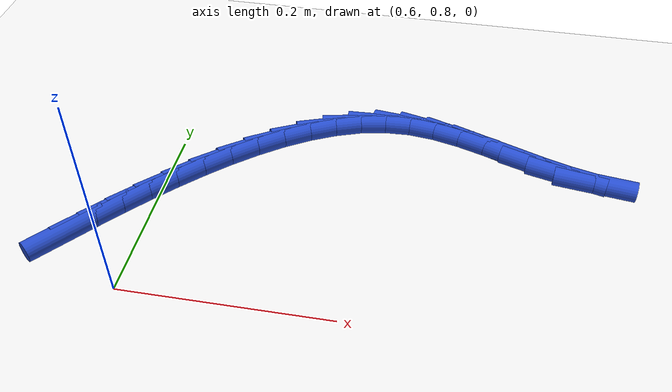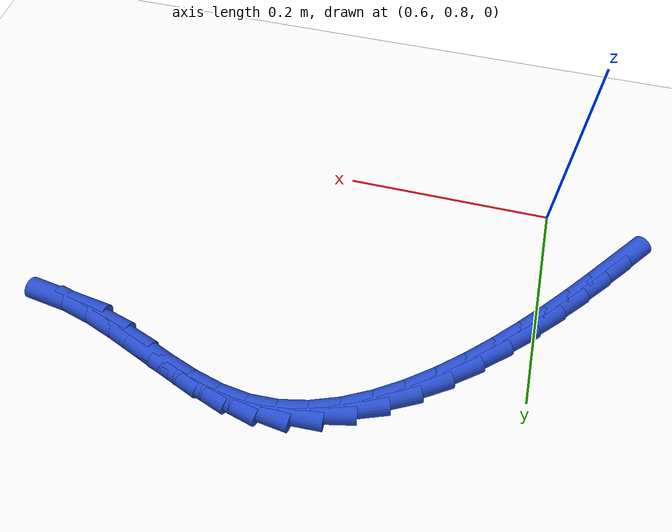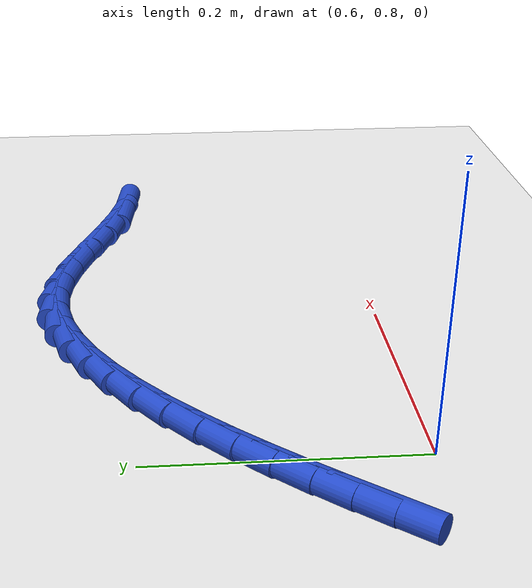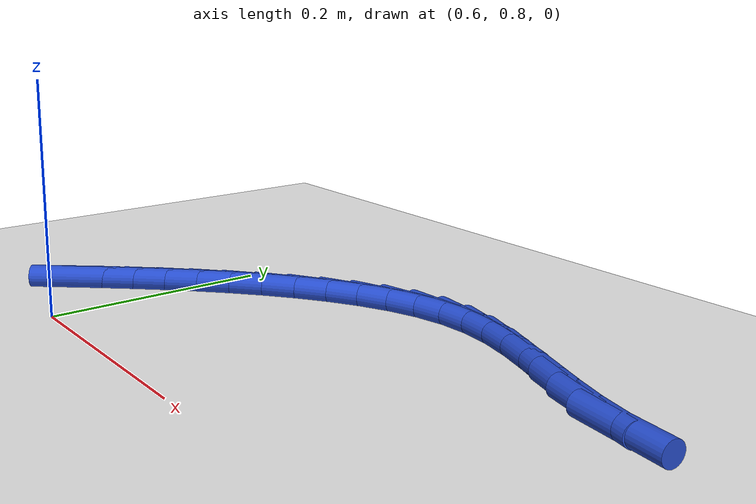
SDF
<sdf version="1.6">
 <world name="default">
  <model name="ground_plane">
   <static>1</static>
   <link name="link">
    <collision name="collision">
     <geometry><plane><normal>0 0 1</normal><size>100 100</size></plane></geometry>
     <surface><friction><ode><mu>100</mu><mu2>50</mu2></ode></friction></surface>
    </collision>
    <visual name="visual">
     <cast_shadows>0</cast_shadows>
     <geometry><plane><normal>0 0 1</normal><size>100 100</size></plane></geometry>
     <material>
      <script><uri>file://media/materials/scripts/gazebo.material</uri><name>Gazebo/WhiteGlow</name></script>
     </material>
    </visual>
   </link>
  </model>
  <model name="line">
   <link name="link_37">
    <pose>0.5349101521762201 0.849109575951042 0.01 0 1.57 0.8877834778519994</pose>
    <collision name="collision">
     <geometry><cylinder><radius>0.01</radius><length>0.08</length></cylinder></geometry>
    </collision>
    <visual name="visual">
     <material>
      <script><name>Gazebo/Blue</name><uri>file://media/materials/scripts/gazebo.material</uri></script>
     </material>
     <geometry><cylinder><radius>0.01</radius><length>0.08</length></cylinder></geometry>
    </visual>
   </link>
   <link name="link_38">
    <pose>0.5528146654434647 0.8711145753755072 0.01 0 1.57 0.8724163662346153</pose>
    <collision name="collision">
     <geometry><cylinder><radius>0.01</radius><length>0.08</length></cylinder></geometry>
    </collision>
    <visual name="visual">
     <material>
      <script><name>Gazebo/Blue</name><uri>file://media/materials/scripts/gazebo.material</uri></script>
     </material>
     <geometry><cylinder><radius>0.01</radius><length>0.08</length></cylinder></geometry>
    </visual>
   </link>
   <link name="link_39">
    <pose>0.5713044225989897 0.893138703471997 0.01 0 1.57 0.8507675223047537</pose>
    <collision name="collision">
     <geometry><cylinder><radius>0.01</radius><length>0.08</length></cylinder></geometry>
    </collision>
    <visual name="visual">
     <material>
      <script><name>Gazebo/Blue</name><uri>file://media/materials/scripts/gazebo.material</uri></script>
     </material>
     <geometry><cylinder><radius>0.01</radius><length>0.08</length></cylinder></geometry>
    </visual>
   </link>
   <link name="link_40">
    <pose>0.5905718948425275 0.915105477926843 0.01 0 1.57 0.8232991175520333</pose>
    <collision name="collision">
     <geometry><cylinder><radius>0.01</radius><length>0.08</length></cylinder></geometry>
    </collision>
    <visual name="visual">
     <material>
      <script><name>Gazebo/Blue</name><uri>file://media/materials/scripts/gazebo.material</uri></script>
     </material>
     <geometry><cylinder><radius>0.01</radius><length>0.08</length></cylinder></geometry>
    </visual>
   </link>
   <link name="link_41">
    <pose>0.6108095526507975 0.9369384153739746 0.01 0 1.57 0.7900038570666732</pose>
    <collision name="collision">
     <geometry><cylinder><radius>0.01</radius><length>0.08</length></cylinder></geometry>
    </collision>
    <visual name="visual">
     <material>
      <script><name>Gazebo/Blue</name><uri>file://media/materials/scripts/gazebo.material</uri></script>
     </material>
     <geometry><cylinder><radius>0.01</radius><length>0.08</length></cylinder></geometry>
    </visual>
   </link>
   <link name="link_42">
    <pose>0.6321555042083911 0.9584819039512215 0.01 0 1.57 0.7486959255549774</pose>
    <collision name="collision">
     <geometry><cylinder><radius>0.01</radius><length>0.08</length></cylinder></geometry>
    </collision>
    <visual name="visual">
     <material>
      <script><name>Gazebo/Blue</name><uri>file://media/materials/scripts/gazebo.material</uri></script>
     </material>
     <geometry><cylinder><radius>0.01</radius><length>0.08</length></cylinder></geometry>
    </visual>
   </link>
   <link name="link_43">
    <pose>0.6545456667338362 0.9792860272988753 0.01 0 1.57 0.6975241856056223</pose>
    <collision name="collision">
     <geometry><cylinder><radius>0.01</radius><length>0.08</length></cylinder></geometry>
    </collision>
    <visual name="visual">
     <material>
      <script><name>Gazebo/Blue</name><uri>file://media/materials/scripts/gazebo.material</uri></script>
     </material>
     <geometry><cylinder><radius>0.01</radius><length>0.08</length></cylinder></geometry>
    </visual>
   </link>
   <link name="link_44">
    <pose>0.6778689600877729 0.9988324607892015 0.01 0 1.57 0.6344658465230945</pose>
    <collision name="collision">
     <geometry><cylinder><radius>0.01</radius><length>0.08</length></cylinder></geometry>
    </collision>
    <visual name="visual">
     <material>
      <script><name>Gazebo/Blue</name><uri>file://media/materials/scripts/gazebo.material</uri></script>
     </material>
     <geometry><cylinder><radius>0.01</radius><length>0.08</length></cylinder></geometry>
    </visual>
   </link>
   <link name="link_45">
    <pose>0.7020143041308403 1.0166028797944655 0.01 0 1.57 0.5568872210970363</pose>
    <collision name="collision">
     <geometry><cylinder><radius>0.01</radius><length>0.08</length></cylinder></geometry>
    </collision>
    <visual name="visual">
     <material>
      <script><name>Gazebo/Blue</name><uri>file://media/materials/scripts/gazebo.material</uri></script>
     </material>
     <geometry><cylinder><radius>0.01</radius><length>0.08</length></cylinder></geometry>
    </visual>
   </link>
   <link name="link_46">
    <pose>0.7268706187236783 1.0320789596869335 0.01 0 1.57 0.4616126764074338</pose>
    <collision name="collision">
     <geometry><cylinder><radius>0.01</radius><length>0.08</length></cylinder></geometry>
    </collision>
    <visual name="visual">
     <material>
      <script><name>Gazebo/Blue</name><uri>file://media/materials/scripts/gazebo.material</uri></script>
     </material>
     <geometry><cylinder><radius>0.01</radius><length>0.08</length></cylinder></geometry>
    </visual>
   </link>
   <link name="link_47">
    <pose>0.7523268237269267 1.0447423758388699 0.01 0 1.57 0.34529017203838597</pose>
    <collision name="collision">
     <geometry><cylinder><radius>0.01</radius><length>0.08</length></cylinder></geometry>
    </collision>
    <visual name="visual">
     <material>
      <script><name>Gazebo/Blue</name><uri>file://media/materials/scripts/gazebo.material</uri></script>
     </material>
     <geometry><cylinder><radius>0.01</radius><length>0.08</length></cylinder></geometry>
    </visual>
   </link>
   <link name="link_48">
    <pose>0.778271839001225 1.0540748036225411 0.01 0 1.57 0.20536660697648249</pose>
    <collision name="collision">
     <geometry><cylinder><radius>0.01</radius><length>0.08</length></cylinder></geometry>
    </collision>
    <visual name="visual">
     <material>
      <script><name>Gazebo/Blue</name><uri>file://media/materials/scripts/gazebo.material</uri></script>
     </material>
     <geometry><cylinder><radius>0.01</radius><length>0.08</length></cylinder></geometry>
    </visual>
   </link>
   <link name="link_49">
    <pose>0.8045945844072123 1.0595579184102117 0.01 0 1.57 0.04193933534597117</pose>
    <collision name="collision">
     <geometry><cylinder><radius>0.01</radius><length>0.08</length></cylinder></geometry>
    </collision>
    <visual name="visual">
     <material>
      <script><name>Gazebo/Blue</name><uri>file://media/materials/scripts/gazebo.material</uri></script>
     </material>
     <geometry><cylinder><radius>0.01</radius><length>0.08</length></cylinder></geometry>
    </visual>
   </link>
   <link name="link_50">
    <pose>0.8311839948935968 1.0606737148843681 0.01 0 1.57 -0.12609204755094047</pose>
    <collision name="collision">
     <geometry><cylinder><radius>0.01</radius><length>0.08</length></cylinder></geometry>
    </collision>
    <visual name="visual">
     <material>
      <script><name>Gazebo/Blue</name><uri>file://media/materials/scripts/gazebo.material</uri></script>
     </material>
     <geometry><cylinder><radius>0.01</radius><length>0.08</length></cylinder></geometry>
    </visual>
   </link>
   <link name="link_51">
    <pose>0.8579468170407604 1.0572811369919108 0.01 0 1.57 -0.2523971524667572</pose>
    <collision name="collision">
     <geometry><cylinder><radius>0.01</radius><length>0.08</length></cylinder></geometry>
    </collision>
    <visual name="visual">
     <material>
      <script><name>Gazebo/Blue</name><uri>file://media/materials/scripts/gazebo.material</uri></script>
     </material>
     <geometry><cylinder><radius>0.01</radius><length>0.08</length></cylinder></geometry>
    </visual>
   </link>
   <link name="link_52">
    <pose>0.8848420492527913 1.0503449390215331 0.01 0 1.57 -0.3322020160063515</pose>
    <collision name="collision">
     <geometry><cylinder><radius>0.01</radius><length>0.08</length></cylinder></geometry>
    </collision>
    <visual name="visual">
     <material>
      <script><name>Gazebo/Blue</name><uri>file://media/materials/scripts/gazebo.material</uri></script>
     </material>
     <geometry><cylinder><radius>0.01</radius><length>0.08</length></cylinder></geometry>
    </visual>
   </link>
   <link name="link_53">
    <pose>0.9118382222133586 1.0410316078062456 0.01 0 1.57 -0.37084151884248046</pose>
    <collision name="collision">
     <geometry><cylinder><radius>0.01</radius><length>0.08</length></cylinder></geometry>
    </collision>
    <visual name="visual">
     <material>
      <script><name>Gazebo/Blue</name><uri>file://media/materials/scripts/gazebo.material</uri></script>
     </material>
     <geometry><cylinder><radius>0.01</radius><length>0.08</length></cylinder></geometry>
    </visual>
   </link>
   <link name="link_54">
    <pose>0.938903866606132 1.0305076301790588 0.01 0 1.57 -0.37178289798972486</pose>
    <collision name="collision">
     <geometry><cylinder><radius>0.01</radius><length>0.08</length></cylinder></geometry>
    </collision>
    <visual name="visual">
     <material>
      <script><name>Gazebo/Blue</name><uri>file://media/materials/scripts/gazebo.material</uri></script>
     </material>
     <geometry><cylinder><radius>0.01</radius><length>0.08</length></cylinder></geometry>
    </visual>
   </link>
   <link name="link_55">
    <pose>0.96600751311478 1.019939492972983 0.01 0 1.57 -0.33526922763700157</pose>
    <collision name="collision">
     <geometry><cylinder><radius>0.01</radius><length>0.08</length></cylinder></geometry>
    </collision>
    <visual name="visual">
     <material>
      <script><name>Gazebo/Blue</name><uri>file://media/materials/scripts/gazebo.material</uri></script>
     </material>
     <geometry><cylinder><radius>0.01</radius><length>0.08</length></cylinder></geometry>
    </visual>
   </link>
   <link name="link_56">
    <pose>0.9931176924229725 1.0104936830210285 0.01 0 1.57 -0.2583351659881827</pose>
    <collision name="collision">
     <geometry><cylinder><radius>0.01</radius><length>0.08</length></cylinder></geometry>
    </collision>
    <visual name="visual">
     <material>
      <script><name>Gazebo/Blue</name><uri>file://media/materials/scripts/gazebo.material</uri></script>
     </material>
     <geometry><cylinder><radius>0.01</radius><length>0.08</length></cylinder></geometry>
    </visual>
   </link>
   <link name="link_57">
    <pose>1.0202029352143782 1.003336687156206 0.01 0 1.57 -0.13931413505435927</pose>
    <collision name="collision">
     <geometry><cylinder><radius>0.01</radius><length>0.08</length></cylinder></geometry>
    </collision>
    <visual name="visual">
     <material>
      <script><name>Gazebo/Blue</name><uri>file://media/materials/scripts/gazebo.material</uri></script>
     </material>
     <geometry><cylinder><radius>0.01</radius><length>0.08</length></cylinder></geometry>
    </visual>
   </link>
  </model>
 </world>
</sdf>
